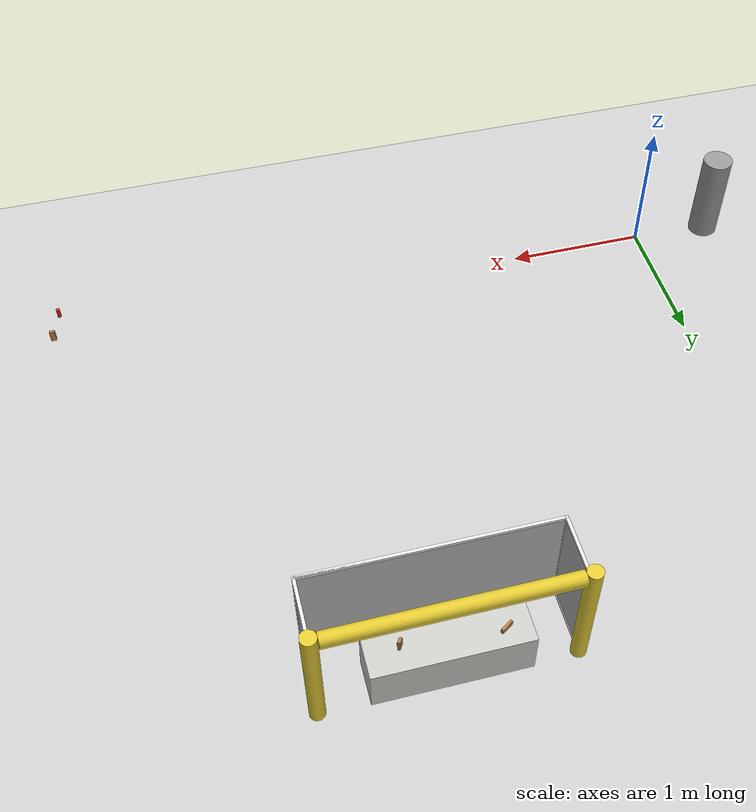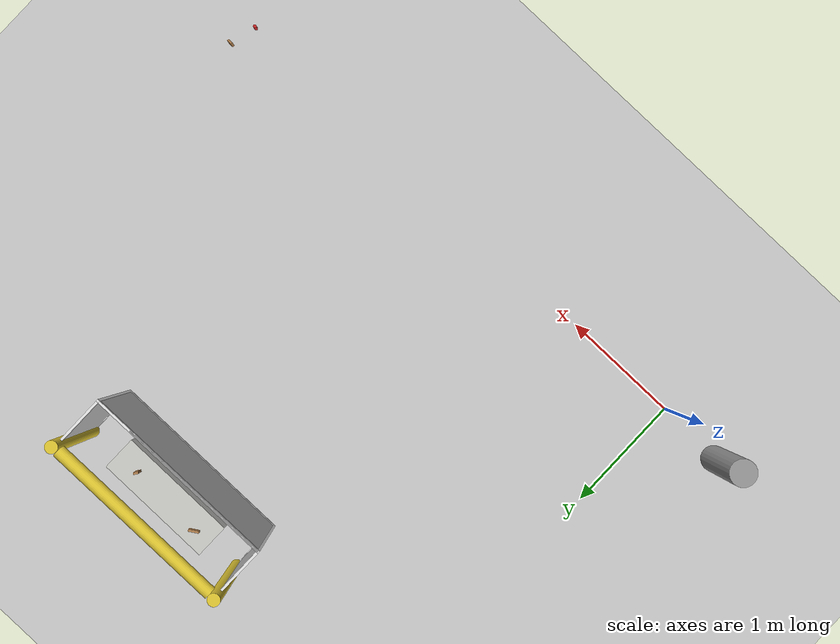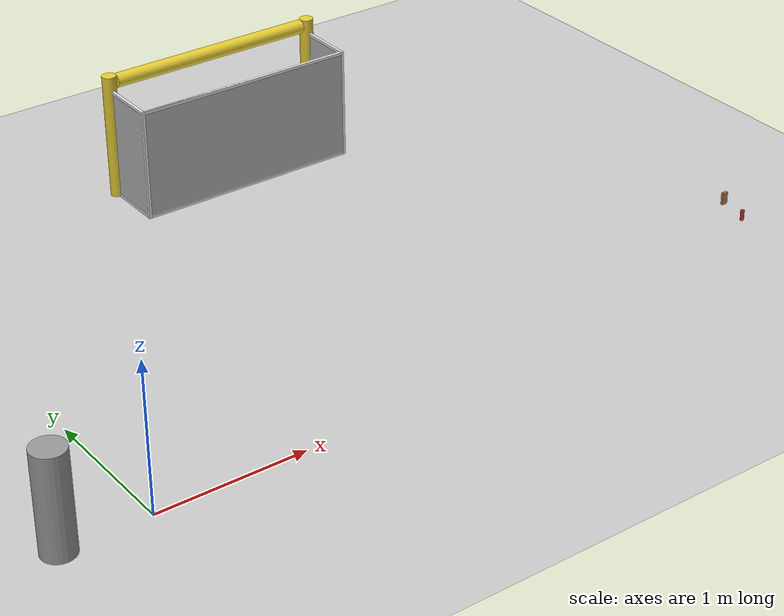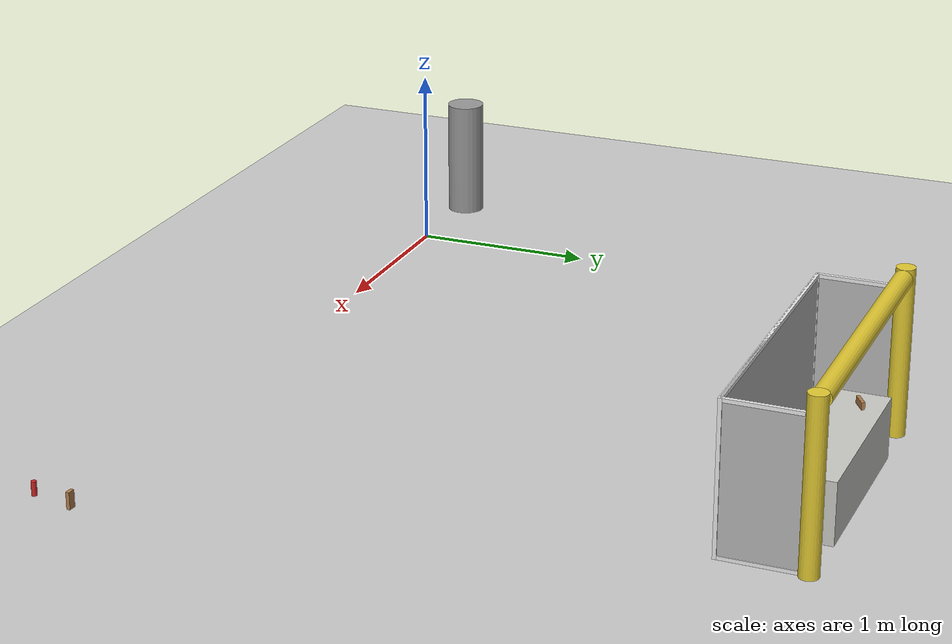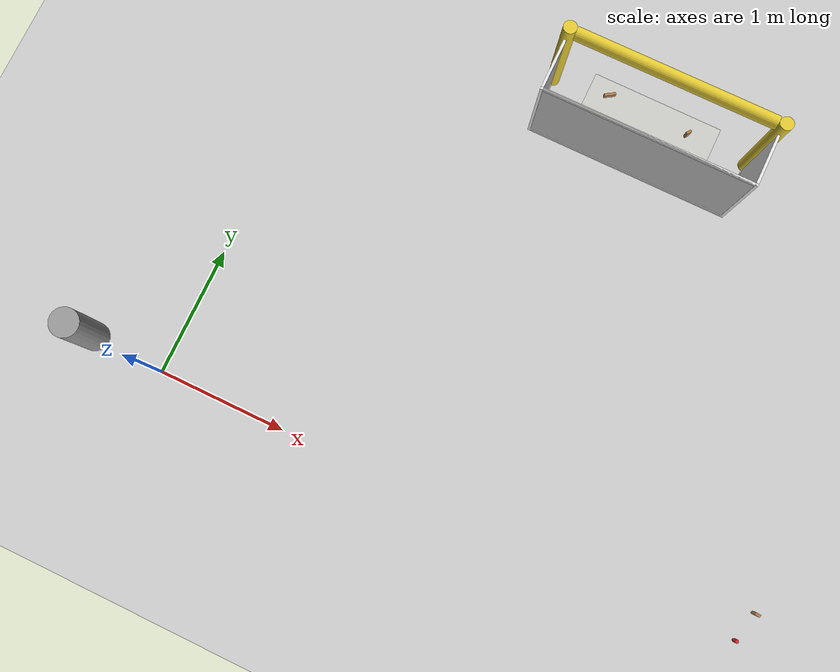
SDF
<sdf version="1.6">
 <world name="default">
  <model name="ground_plane">
   <static>1</static>
   <link name="link">
    <collision name="collision">
     <geometry><plane><normal>0 0 1</normal><size>100 100</size></plane></geometry>
     <surface>
      <contact><collide_bitmask>65535</collide_bitmask></contact>
      <friction><ode><mu>100</mu><mu2>50</mu2></ode></friction>
     </surface>
    </collision>
    <visual name="visual">
     <cast_shadows>0</cast_shadows>
     <geometry><plane><normal>0 0 1</normal><size>100 100</size></plane></geometry>
     <material>
      <script><uri>file://media/materials/scripts/gazebo.material</uri><name>Gazebo/Grey</name></script>
     </material>
    </visual>
   </link>
  </model>
  <model name="small_table_0">
   <link name="link">
    <inertial>
     <mass>1000</mass>
     <inertia><ixx>92.2402</ixx><ixy>0</ixy><ixz>0</ixz><iyy>15.7852</iyy><iyz>0</iyz><izz>90.2116</izz></inertia>
    </inertial>
    <visual name="visual">
     <geometry><box><size>0.287297 1 0.326929</size></box></geometry>
     <material>
      <script><name>Gazebo/CeilingTiled</name><uri>file://media/materials/scripts/gazebo.material</uri></script>
      <shader type="pixel"><normal_map>__default__</normal_map></shader>
      <ambient>0.7 0.7 0.7 1</ambient>
      <diffuse>0.9 0.9 0.9 1</diffuse>
      <specular>0.01 0.01 0.01 1</specular>
      <emissive>0 0 0 1</emissive>
     </material>
    </visual>
    <collision name="collision">
     <geometry><box><size>0.287297 1 0.326929</size></box></geometry>
     <surface>
      <friction>
       <ode><mu>1</mu><mu2>1</mu2><fdir1>0 0 0</fdir1><slip1>0</slip1><slip2>0</slip2></ode>
       <torsional>
        <coefficient>1</coefficient>
        <patch_radius>0</patch_radius>
        <surface_radius>0</surface_radius>
        <use_patch_radius>1</use_patch_radius>
        <ode><slip>0</slip></ode>
       </torsional>
      </friction>
      <bounce><restitution_coefficient>0</restitution_coefficient><threshold>1e+06</threshold></bounce>
      <contact>
       <collide_without_contact>0</collide_without_contact>
       <collide_without_contact_bitmask>1</collide_without_contact_bitmask>
       <collide_bitmask>1</collide_bitmask>
       <ode>
        <soft_cfm>0</soft_cfm>
        <soft_erp>0.2</soft_erp>
        <kp>1e+13</kp>
        <kd>1</kd>
        <max_vel>0.01</max_vel>
        <min_depth>0</min_depth>
       </ode>
       <bullet>
        <split_impulse>1</split_impulse>
        <split_impulse_penetration_threshold>-0.01</split_impulse_penetration_threshold>
        <soft_cfm>0</soft_cfm>
        <soft_erp>0.2</soft_erp>
        <kp>1e+13</kp>
        <kd>1</kd>
       </bullet>
      </contact>
     </surface>
    </collision>
   </link>
   <static>0</static>
   <pose>2.45054 3.20313 0.163464 0 -0 1.56878</pose>
  </model>
  <model name="RoboCup 2014 SPL Goal_1">
   <static>1</static>
   <link name="left_post">
    <pose>0 0.8 0.45 0 -0 0</pose>
    <collision name="collision">
     <geometry><cylinder><radius>0.05</radius><length>0.9</length></cylinder></geometry>
    </collision>
    <visual name="visual">
     <geometry><cylinder><radius>0.05</radius><length>0.9</length></cylinder></geometry>
     <material>
      <script><uri>file://media/materials/scripts/gazebo.material</uri><name>Gazebo/ZincYellow</name></script>
     </material>
    </visual>
   </link>
   <link name="left_support_horiz_lower">
    <pose>0.24 0.8 0.01 0 -0 0</pose>
    <collision name="collision"><geometry><box><size>0.38 0.02 0.02</size></box></geometry></collision>
    <visual name="visual">
     <geometry><box><size>0.38 0.02 0.02</size></box></geometry>
     <material>
      <script><uri>file://media/materials/scripts/gazebo.material</uri><name>Gazebo/White</name></script>
     </material>
    </visual>
   </link>
   <link name="left_support_horiz_upper">
    <pose>0.24 0.8 0.79 0 -0 0</pose>
    <collision name="collision"><geometry><box><size>0.38 0.02 0.02</size></box></geometry></collision>
    <visual name="visual">
     <geometry><box><size>0.38 0.02 0.02</size></box></geometry>
     <material>
      <script><uri>file://media/materials/scripts/gazebo.material</uri><name>Gazebo/White</name></script>
     </material>
    </visual>
   </link>
   <link name="left_support_vertical">
    <pose>0.44 0.8 0.4 3.14159 1.57079 3.14159</pose>
    <collision name="collision"><geometry><box><size>0.8 0.02 0.02</size></box></geometry></collision>
    <visual name="visual">
     <geometry><box><size>0.8 0.02 0.02</size></box></geometry>
     <material>
      <script><uri>file://media/materials/scripts/gazebo.material</uri><name>Gazebo/White</name></script>
     </material>
    </visual>
   </link>
   <link name="right_support_horiz_lower">
    <pose>0.24 -0.8 0.01 0 -0 0</pose>
    <collision name="collision"><geometry><box><size>0.38 0.02 0.02</size></box></geometry></collision>
    <visual name="visual">
     <geometry><box><size>0.38 0.02 0.02</size></box></geometry>
     <material>
      <script><uri>file://media/materials/scripts/gazebo.material</uri><name>Gazebo/White</name></script>
     </material>
    </visual>
   </link>
   <link name="right_support_horiz_upper">
    <pose>0.24 -0.8 0.79 0 -0 0</pose>
    <collision name="collision"><geometry><box><size>0.38 0.02 0.02</size></box></geometry></collision>
    <visual name="visual">
     <geometry><box><size>0.38 0.02 0.02</size></box></geometry>
     <material>
      <script><uri>file://media/materials/scripts/gazebo.material</uri><name>Gazebo/White</name></script>
     </material>
    </visual>
   </link>
   <link name="right_support_vertical">
    <pose>0.44 -0.8 0.4 3.14159 1.57079 3.14159</pose>
    <collision name="collision"><geometry><box><size>0.8 0.02 0.02</size></box></geometry></collision>
    <visual name="visual">
     <geometry><box><size>0.8 0.02 0.02</size></box></geometry>
     <material>
      <script><uri>file://media/materials/scripts/gazebo.material</uri><name>Gazebo/White</name></script>
     </material>
    </visual>
   </link>
   <link name="center_support_horiz_lower">
    <pose>0.44 0 0.01 3.14159 1.57079 3.14159</pose>
    <collision name="collision"><geometry><box><size>0.02 1.58 0.02</size></box></geometry></collision>
    <visual name="visual">
     <geometry><box><size>0.02 1.58 0.02</size></box></geometry>
     <material>
      <script><uri>file://media/materials/scripts/gazebo.material</uri><name>Gazebo/White</name></script>
     </material>
    </visual>
   </link>
   <link name="center_support_horiz_upper">
    <pose>0.44 0 0.79 3.14159 1.57079 3.14159</pose>
    <collision name="collision"><geometry><box><size>0.02 1.58 0.02</size></box></geometry></collision>
    <visual name="visual">
     <geometry><box><size>0.02 1.58 0.02</size></box></geometry>
     <material>
      <script><uri>file://media/materials/scripts/gazebo.material</uri><name>Gazebo/White</name></script>
     </material>
    </visual>
   </link>
   <link name="right_post">
    <pose>0 -0.8 0.45 0 -0 0</pose>
    <collision name="collision">
     <geometry><cylinder><radius>0.05</radius><length>0.9</length></cylinder></geometry>
    </collision>
    <visual name="visual">
     <geometry><cylinder><radius>0.05</radius><length>0.9</length></cylinder></geometry>
     <material>
      <script><uri>file://media/materials/scripts/gazebo.material</uri><name>Gazebo/ZincYellow</name></script>
     </material>
    </visual>
   </link>
   <link name="crossbar">
    <pose>0 0 0.85 1.57 1.57 0</pose>
    <collision name="collision">
     <geometry><cylinder><radius>0.05</radius><length>1.5</length></cylinder></geometry>
    </collision>
    <visual name="visual">
     <geometry><cylinder><radius>0.05</radius><length>1.5</length></cylinder></geometry>
     <material>
      <script><uri>file://media/materials/scripts/gazebo.material</uri><name>Gazebo/ZincYellow</name></script>
     </material>
    </visual>
   </link>
   <link name="center_net">
    <pose>0.44 0 0.4 0 -0 0</pose>
    <collision name="collision"><geometry><box><size>0.01 1.6 0.8</size></box></geometry></collision>
    <visual name="visual">
     <geometry><box><size>0.01 1.6 0.8</size></box></geometry>
     <material>
      <script>
       <uri>model://robocup09_spl_field/materials/scripts/</uri>
       <uri>model://robocup09_spl_field/materials/textures/</uri>
       <name>RoboCup/Net</name>
      </script>
     </material>
    </visual>
   </link>
   <link name="left_net">
    <pose>0.24 0.8 0.4 0 -0 0</pose>
    <collision name="collision"><geometry><box><size>0.38 0.01 0.76</size></box></geometry></collision>
    <visual name="visual">
     <geometry><box><size>0.38 0.01 0.76</size></box></geometry>
     <material>
      <script>
       <uri>model://robocup09_spl_field/materials/scripts/</uri>
       <uri>model://robocup09_spl_field/materials/textures/</uri>
       <name>RoboCup/Net</name>
      </script>
     </material>
    </visual>
   </link>
   <link name="right_net">
    <pose>0.24 -0.8 0.4 0 -0 0</pose>
    <collision name="collision"><geometry><box><size>0.38 0.01 0.76</size></box></geometry></collision>
    <visual name="visual">
     <geometry><box><size>0.38 0.01 0.76</size></box></geometry>
     <material>
      <script>
       <uri>model://robocup09_spl_field/materials/scripts/</uri>
       <uri>model://robocup09_spl_field/materials/textures/</uri>
       <name>RoboCup/Net</name>
      </script>
     </material>
    </visual>
   </link>
   <pose>2.46374 3.31443 -0 0 0 -1.56937</pose>
  </model>
  <model name="unit_cylinder">
   <link name="link">
    <inertial>
     <mass>1</mass>
     <inertia><ixx>0.145833</ixx><ixy>0</ixy><ixz>0</ixz><iyy>0.145833</iyy><iyz>0</iyz><izz>0.125</izz></inertia>
    </inertial>
    <visual name="visual">
     <geometry><cylinder><radius>0.108142</radius><length>0.679054</length></cylinder></geometry>
     <material>
      <script><name>Gazebo/Grey</name><uri>file://media/materials/scripts/gazebo.material</uri></script>
     </material>
    </visual>
    <collision name="collision">
     <geometry><cylinder><radius>0.108142</radius><length>0.679054</length></cylinder></geometry>
     <surface>
      <friction>
       <ode><mu>1</mu><mu2>1</mu2><fdir1>0 0 0</fdir1><slip1>0</slip1><slip2>0</slip2></ode>
       <torsional>
        <coefficient>1</coefficient>
        <patch_radius>0</patch_radius>
        <surface_radius>0</surface_radius>
        <use_patch_radius>1</use_patch_radius>
        <ode><slip>0</slip></ode>
       </torsional>
      </friction>
      <bounce><restitution_coefficient>0</restitution_coefficient><threshold>1e+06</threshold></bounce>
      <contact>
       <collide_without_contact>0</collide_without_contact>
       <collide_without_contact_bitmask>1</collide_without_contact_bitmask>
       <collide_bitmask>1</collide_bitmask>
       <ode>
        <soft_cfm>0</soft_cfm>
        <soft_erp>0.2</soft_erp>
        <kp>1e+13</kp>
        <kd>1</kd>
        <max_vel>0.01</max_vel>
        <min_depth>0</min_depth>
       </ode>
       <bullet>
        <split_impulse>1</split_impulse>
        <split_impulse_penetration_threshold>-0.01</split_impulse_penetration_threshold>
        <soft_cfm>0</soft_cfm>
        <soft_erp>0.2</soft_erp>
        <kp>1e+13</kp>
        <kd>1</kd>
       </bullet>
      </contact>
     </surface>
    </collision>
   </link>
   <static>0</static>
   <pose>-0.564138 0.019756 0.339518 0 -0 1e-06</pose>
  </model>
  <model name="grasp_cylinder_2">
   <link name="link">
    <inertial>
     <mass>0.05</mass>
     <inertia>
      <ixx>2.297e-05</ixx>
      <ixy>0</ixy>
      <ixz>0</ixz>
      <iyy>2.297e-05</iyy>
      <iyz>0</iyz>
      <izz>4.31e-06</izz>
     </inertia>
    </inertial>
    <visual name="visual">
     <geometry><cylinder><radius>0.0131252</radius><length>0.0706744</length></cylinder></geometry>
     <material>
      <script><name>Gazebo/Red</name><uri>file://media/materials/scripts/gazebo.material</uri></script>
      <shader type="vertex"><normal_map>__default__</normal_map></shader>
      <ambient>1 0 0 1</ambient>
      <diffuse>0.7 0.7 0.7 1</diffuse>
      <specular>0.01 0.01 0.01 1</specular>
      <emissive>0 0 0 1</emissive>
     </material>
    </visual>
    <collision name="collision">
     <geometry><cylinder><radius>0.013125</radius><length>0.070674</length></cylinder></geometry>
     <surface>
      <friction>
       <ode><mu>100</mu><mu2>100</mu2><fdir1>0 0 0</fdir1><slip1>0</slip1><slip2>0</slip2></ode>
       <torsional>
        <coefficient>1</coefficient>
        <patch_radius>0</patch_radius>
        <surface_radius>0</surface_radius>
        <use_patch_radius>1</use_patch_radius>
        <ode><slip>0</slip></ode>
       </torsional>
      </friction>
      <bounce><restitution_coefficient>0</restitution_coefficient><threshold>1e+06</threshold></bounce>
      <contact>
       <collide_without_contact>0</collide_without_contact>
       <collide_without_contact_bitmask>1</collide_without_contact_bitmask>
       <collide_bitmask>1</collide_bitmask>
       <ode>
        <soft_cfm>0</soft_cfm>
        <soft_erp>0.2</soft_erp>
        <kp>1e+13</kp>
        <kd>1</kd>
        <max_vel>0.01</max_vel>
        <min_depth>0</min_depth>
       </ode>
       <bullet>
        <split_impulse>1</split_impulse>
        <split_impulse_penetration_threshold>-0.01</split_impulse_penetration_threshold>
        <soft_cfm>0</soft_cfm>
        <soft_erp>0.2</soft_erp>
        <kp>1e+13</kp>
        <kd>1</kd>
       </bullet>
      </contact>
     </surface>
    </collision>
   </link>
   <static>0</static>
   <pose>4.44003 0.060778 0.358452 -0.000504 -0.002739 0.017991</pose>
  </model>
  <model name="Grasp_Rectangular">
   <link name="link">
    <inertial>
     <mass>0.05</mass>
     <inertia>
      <ixx>7.243e-05</ixx>
      <ixy>0</ixy>
      <ixz>0</ixz>
      <iyy>6.624e-05</iyy>
      <iyz>0</iyz>
      <izz>1.446e-05</izz>
     </inertia>
    </inertial>
    <visual name="visual">
     <geometry><box><size>0.018685 0.038411 0.085607</size></box></geometry>
     <material>
      <script><name>Gazebo/Wood</name><uri>file://media/materials/scripts/gazebo.material</uri></script>
      <shader type="vertex"><normal_map>__default__</normal_map></shader>
      <ambient>0.8 0.8 0.8 1</ambient>
      <diffuse>0.7 0.7 0.7 1</diffuse>
      <specular>0.01 0.01 0.01 1</specular>
      <emissive>0.2 0.2 0.2 1</emissive>
     </material>
    </visual>
    <collision name="collision">
     <geometry><box><size>0.018685 0.038411 0.085607</size></box></geometry>
     <surface>
      <friction>
       <ode><mu>20</mu><mu2>20</mu2><fdir1>0 0 0</fdir1><slip1>0</slip1><slip2>0</slip2></ode>
       <torsional>
        <coefficient>1</coefficient>
        <patch_radius>0</patch_radius>
        <surface_radius>0</surface_radius>
        <use_patch_radius>1</use_patch_radius>
        <ode><slip>0</slip></ode>
       </torsional>
      </friction>
      <bounce><restitution_coefficient>0</restitution_coefficient><threshold>1e+06</threshold></bounce>
      <contact>
       <collide_without_contact>0</collide_without_contact>
       <collide_without_contact_bitmask>1</collide_without_contact_bitmask>
       <collide_bitmask>1</collide_bitmask>
       <ode>
        <soft_cfm>0</soft_cfm>
        <soft_erp>0.2</soft_erp>
        <kp>1e+13</kp>
        <kd>1</kd>
        <max_vel>0.01</max_vel>
        <min_depth>0</min_depth>
       </ode>
       <bullet>
        <split_impulse>1</split_impulse>
        <split_impulse_penetration_threshold>-0.01</split_impulse_penetration_threshold>
        <soft_cfm>0</soft_cfm>
        <soft_erp>0.2</soft_erp>
        <kp>1e+13</kp>
        <kd>1</kd>
       </bullet>
      </contact>
     </surface>
    </collision>
   </link>
   <static>0</static>
   <pose>4.49254 0.281511 0.369732 0 -0 1.49554</pose>
  </model>
  <model name="Grasp_Rectangular_0">
   <link name="link">
    <inertial>
     <mass>0.05</mass>
     <inertia>
      <ixx>7.243e-05</ixx>
      <ixy>0</ixy>
      <ixz>0</ixz>
      <iyy>6.624e-05</iyy>
      <iyz>0</iyz>
      <izz>1.446e-05</izz>
     </inertia>
    </inertial>
    <visual name="visual">
     <geometry><box><size>0.018685 0.038411 0.085607</size></box></geometry>
     <material>
      <script><name>Gazebo/Wood</name><uri>file://media/materials/scripts/gazebo.material</uri></script>
      <shader type="vertex"><normal_map>__default__</normal_map></shader>
      <ambient>0.8 0.8 0.8 1</ambient>
      <diffuse>0.7 0.7 0.7 1</diffuse>
      <specular>0.01 0.01 0.01 1</specular>
      <emissive>0.2 0.2 0.2 1</emissive>
     </material>
    </visual>
    <collision name="collision">
     <geometry><box><size>0.018685 0.038411 0.085607</size></box></geometry>
     <surface>
      <friction>
       <ode><mu>20</mu><mu2>20</mu2><fdir1>0 0 0</fdir1><slip1>0</slip1><slip2>0</slip2></ode>
       <torsional>
        <coefficient>1</coefficient>
        <patch_radius>0</patch_radius>
        <surface_radius>0</surface_radius>
        <use_patch_radius>1</use_patch_radius>
        <ode><slip>0</slip></ode>
       </torsional>
      </friction>
      <bounce><restitution_coefficient>0</restitution_coefficient><threshold>1e+06</threshold></bounce>
      <contact>
       <collide_without_contact>0</collide_without_contact>
       <collide_without_contact_bitmask>1</collide_without_contact_bitmask>
       <collide_bitmask>1</collide_bitmask>
       <ode>
        <soft_cfm>0</soft_cfm>
        <soft_erp>0.2</soft_erp>
        <kp>1e+13</kp>
        <kd>1</kd>
        <max_vel>0.01</max_vel>
        <min_depth>0</min_depth>
       </ode>
       <bullet>
        <split_impulse>1</split_impulse>
        <split_impulse_penetration_threshold>-0.01</split_impulse_penetration_threshold>
        <soft_cfm>0</soft_cfm>
        <soft_erp>0.2</soft_erp>
        <kp>1e+13</kp>
        <kd>1</kd>
       </bullet>
      </contact>
     </surface>
    </collision>
   </link>
   <static>0</static>
   <pose>2.73915 3.195 0.369732 1e-06 -6e-06 -0.597213</pose>
  </model>
  <model name="Grasp_Rectangular_1">
   <link name="link">
    <inertial>
     <mass>0.05</mass>
     <inertia>
      <ixx>7.243e-05</ixx>
      <ixy>0</ixy>
      <ixz>0</ixz>
      <iyy>6.624e-05</iyy>
      <iyz>0</iyz>
      <izz>1.446e-05</izz>
     </inertia>
    </inertial>
    <visual name="visual">
     <geometry><box><size>0.018685 0.038411 0.085607</size></box></geometry>
     <material>
      <script><name>Gazebo/Wood</name><uri>file://media/materials/scripts/gazebo.material</uri></script>
      <shader type="vertex"><normal_map>__default__</normal_map></shader>
      <ambient>0.8 0.8 0.8 1</ambient>
      <diffuse>0.7 0.7 0.7 1</diffuse>
      <specular>0.01 0.01 0.01 1</specular>
      <emissive>0.2 0.2 0.2 1</emissive>
     </material>
    </visual>
    <collision name="collision">
     <geometry><box><size>0.018685 0.038411 0.085607</size></box></geometry>
     <surface>
      <friction>
       <ode><mu>20</mu><mu2>20</mu2><fdir1>0 0 0</fdir1><slip1>0</slip1><slip2>0</slip2></ode>
       <torsional>
        <coefficient>1</coefficient>
        <patch_radius>0</patch_radius>
        <surface_radius>0</surface_radius>
        <use_patch_radius>1</use_patch_radius>
        <ode><slip>0</slip></ode>
       </torsional>
      </friction>
      <bounce><restitution_coefficient>0</restitution_coefficient><threshold>1e+06</threshold></bounce>
      <contact>
       <collide_without_contact>0</collide_without_contact>
       <collide_without_contact_bitmask>1</collide_without_contact_bitmask>
       <collide_bitmask>1</collide_bitmask>
       <ode>
        <soft_cfm>0</soft_cfm>
        <soft_erp>0.2</soft_erp>
        <kp>1e+13</kp>
        <kd>1</kd>
        <max_vel>0.01</max_vel>
        <min_depth>0</min_depth>
       </ode>
       <bullet>
        <split_impulse>1</split_impulse>
        <split_impulse_penetration_threshold>-0.01</split_impulse_penetration_threshold>
        <soft_cfm>0</soft_cfm>
        <soft_erp>0.2</soft_erp>
        <kp>1e+13</kp>
        <kd>1</kd>
       </bullet>
      </contact>
     </surface>
    </collision>
   </link>
   <static>0</static>
   <pose>2.10924 3.23207 0.346127 1.5708 -8e-06 -1.00746</pose>
  </model>
 </world>
</sdf>
